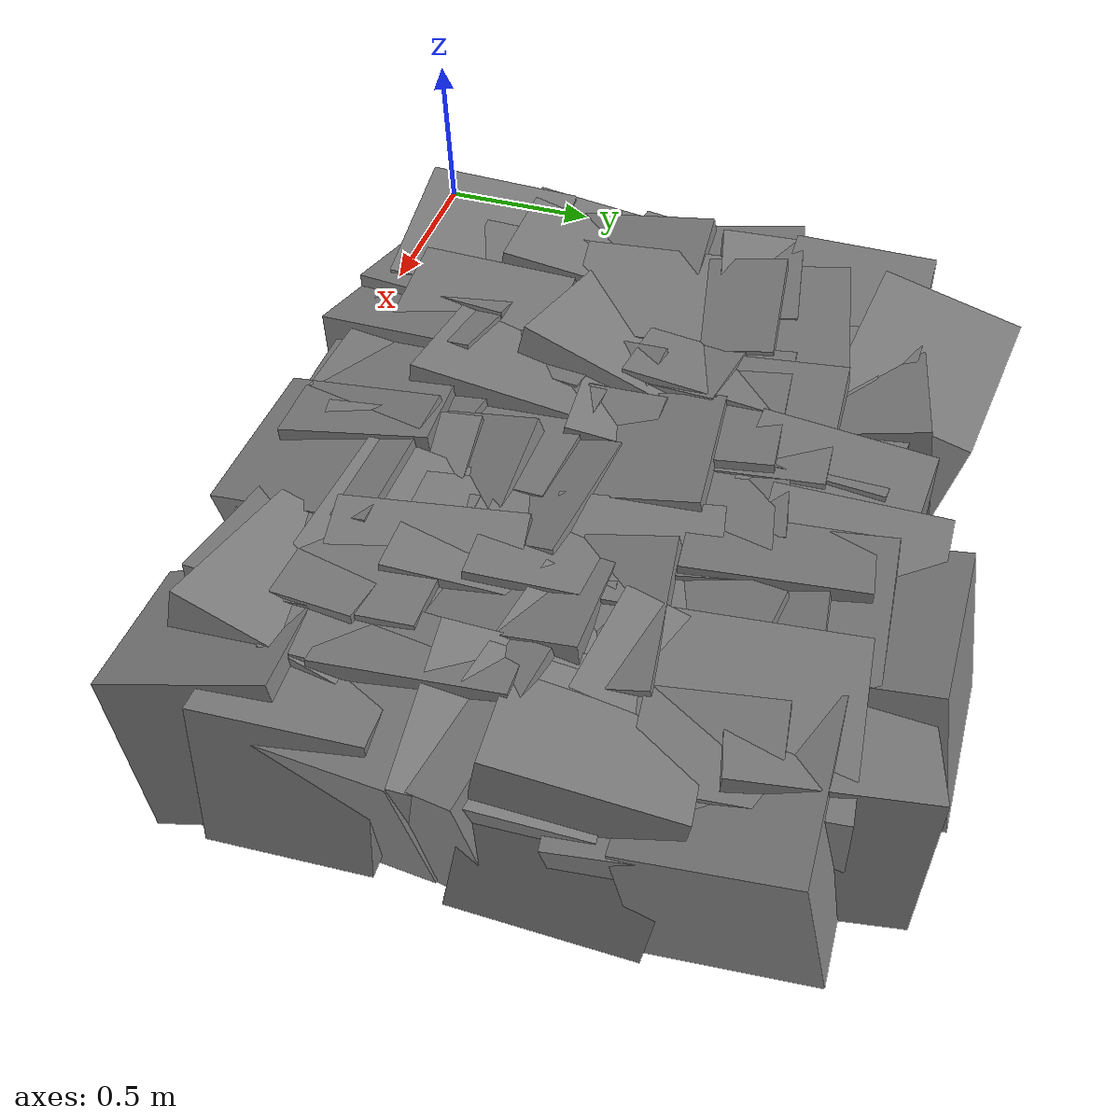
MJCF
<mujoco model="floor_rough">
  <worldbody>
    <body name="floor_rough" pos="0 0 0" euler="0 0 0">
      <geom pos="0.16323154240764468 0.16711684075263722 -0.25" type="box" size="0.2614055181358708 0.26165144024134473 0.2678547705118678" quat="0.9955021653277455 -0.05227951545653168 0.07035307380236844 0.03595463944971459" contype="1" conaffinity="0"/>
      <geom pos="0.16323154240764468 0.3521853855398272 -0.25" type="box" size="0.25924078297964065 0.2569304019955344 0.22566938831263317" quat="0.9990850041588107 0.03301489185005833 -0.00351757410408929 -0.026959192375520944" contype="1" conaffinity="0"/>
      <geom pos="0.16323154240764468 0.505583415616016 -0.25" type="box" size="0.24081742859994984 0.23449502676190112 0.2691886951186675" quat="0.9949381652042242 -0.07835460175762865 -0.05950951959781436 0.020425985427704803" contype="1" conaffinity="0"/>
      <geom pos="0.16323154240764468 0.7457515739619736 -0.25" type="box" size="0.22984282514121657 0.2521829416242697 0.2514942252767554" quat="0.9944065570633525 0.06481248162182318 0.08227877188193862 0.013606806863860961" contype="1" conaffinity="0"/>
      <geom pos="0.16323154240764468 0.9017023553608359 -0.25" type="box" size="0.24839394994689584 0.2595235650809874 0.23018221051131732" quat="0.9967868092370497 -0.016145340877784558 -0.01713956454608466 -0.07656121881300189" contype="1" conaffinity="0"/>
      <geom pos="0.16323154240764468 1.0676839715721342 -0.25" type="box" size="0.24749213661735422 0.2533788666755142 0.2630994714539131" quat="0.9964200523869327 0.04704799179066725 0.011502733410774457 0.0692910729731367" contype="1" conaffinity="0"/>
      <geom pos="0.16323154240764468 1.2411087240397314 -0.25" type="box" size="0.2362889456158356 0.23989852661129554 0.2531115424006869" quat="0.9896071260008322 -0.06415390074674603 0.08231325932054186 0.09892694540608647" contype="1" conaffinity="0"/>
      <geom pos="0.16323154240764468 1.4789797265998796 -0.25" type="box" size="0.2415470925708963 0.23681838135944178 0.26613522710570564" quat="0.9971968532336004 0.003352583160421332 0.07382655888063364 -0.01169766177499612" contype="1" conaffinity="0"/>
      <geom pos="0.3589414990852865 0.18366497476974786 -0.25" type="box" size="0.24743694238604977 0.2733298134370998 0.22783127908555437" quat="0.993615913845723 0.024030615022289543 -0.06825603169359859 -0.08655090659040854" contype="1" conaffinity="0"/>
      <geom pos="0.3589414990852865 0.42016969103554414 -0.25" type="box" size="0.25309217176772025 0.24644665540658217 0.22978832104744615" quat="0.9960525240841488 -0.006756400528304559 0.08745157830079797 -0.013636046721706414" contype="1" conaffinity="0"/>
      <geom pos="0.3589414990852865 0.6661082959588841 -0.25" type="box" size="0.2701106401964972 0.2583676334259062 0.22868416206406394" quat="0.9948666270629181 0.043215771091039926 0.015409344449585437 -0.0901961395465098" contype="1" conaffinity="0"/>
      <geom pos="0.3589414990852865 0.8343165792711791 -0.25" type="box" size="0.22622581847026968 0.24949458961140408 0.2719696791054209" quat="0.9977427137624555 -0.011617766411774116 0.01623090805936894 0.06411756593243664" contype="1" conaffinity="0"/>
      <geom pos="0.3589414990852865 1.0329073499515262 -0.25" type="box" size="0.2289042285648701 0.2731819121215619 0.2665926433751886" quat="0.9958694441928445 0.07206469056664687 0.026075849458922436 0.04869066205715486" contype="1" conaffinity="0"/>
      <geom pos="0.3589414990852865 1.2792092620560895 -0.25" type="box" size="0.25153327540667536 0.23545648388732002 0.27150590752666504" quat="0.9958463452541565 0.04385347989041435 0.013677693560492442 0.07861201971903264" contype="1" conaffinity="0"/>
      <geom pos="0.3589414990852865 1.4990726838735822 -0.25" type="box" size="0.2446336711906654 0.25260744428445353 0.23575782907337373" quat="0.9973486801005172 0.045079879011220715 0.04813001867325701 -0.030772002089592177" contype="1" conaffinity="0"/>
      <geom pos="0.3589414990852865 1.7125923181655747 -0.25" type="box" size="0.26682083237387566 0.23324402850423293 0.25387208472869377" quat="0.9884530884707059 -0.08486620865920869 0.10210978843938617 -0.07301924147372599" contype="1" conaffinity="0"/>
      <geom pos="0.5890917146071166 0.15612923096071146 -0.25" type="box" size="0.252007640384064 0.27165724810322217 0.2323357786584752" quat="0.9924261364921559 0.05005384958882335 -0.08950804102972633 -0.06762607736378566" contype="1" conaffinity="0"/>
      <geom pos="0.5890917146071166 0.3102215333618008 -0.25" type="box" size="0.25268580150115794 0.2642315155496849 0.25217482518812895" quat="0.9959472868897539 -0.0068810639374444265 0.08897848140324674 -0.011157174516840165" contype="1" conaffinity="0"/>
      <geom pos="0.5890917146071166 0.542288459049918 -0.25" type="box" size="0.25789446427593266 0.26486417830051207 0.23585336713777516" quat="0.9942002740903005 0.029083544248112374 -0.035292332642472814 -0.0973366000505071" contype="1" conaffinity="0"/>
      <geom pos="0.5890917146071166 0.7650836360875785 -0.25" type="box" size="0.2691346622054962 0.253745575464073 0.27236127073077454" quat="0.9860040884823711 -0.10514566116777731 -0.0804314482521126 -0.10134648274956123" contype="1" conaffinity="0"/>
      <geom pos="0.5890917146071166 0.9673122132735689 -0.25" type="box" size="0.23558615307707229 0.26041221867834224 0.251691543622762" quat="0.9940557782414418 0.05285259771320988 -0.0398932183987607 -0.08641900129922796" contype="1" conaffinity="0"/>
      <geom pos="0.5890917146071166 1.1261473692256518 -0.25" type="box" size="0.26799345325243273 0.2534909743248345 0.25909719421819083" quat="0.9963738699757333 -0.01866066459365996 -0.06626149492352158 -0.05000305107694381" contype="1" conaffinity="0"/>
      <geom pos="0.5890917146071166 1.3728923514871223 -0.25" type="box" size="0.2606246620653105 0.25146989420452953 0.23194121108725524" quat="0.9979918352674308 0.007386881369363766 0.03877414478337732 0.049540856063435404" contype="1" conaffinity="0"/>
      <geom pos="0.5890917146071166 1.5669218070804165 -0.25" type="box" size="0.2391115062403861 0.23878204416263557 0.23031595662690357" quat="0.9937291929339126 0.06842217305708867 -0.02037701553123293 0.08605506715528259" contype="1" conaffinity="0"/>
      <geom pos="0.8247675214417498 0.1720631898757524 -0.25" type="box" size="0.2709401050433787 0.23247194311113245 0.23052215205709523" quat="0.9995958769252122 -0.004316866143274422 -0.02769851883414746 -0.00471588329069096" contype="1" conaffinity="0"/>
      <geom pos="0.8247675214417498 0.3296472603606147 -0.25" type="box" size="0.2680168622721446 0.22796456935026432 0.23191684982681318" quat="0.9940109894682382 0.07018363880924726 -0.023913709185593844 -0.0802779183390665" contype="1" conaffinity="0"/>
      <geom pos="0.8247675214417498 0.4900644138113639 -0.25" type="box" size="0.22676219402796088 0.26532279259274755 0.26859305881800977" quat="0.994814082169978 -0.04809181645099809 -0.08706668367183261 -0.02124880469900107" contype="1" conaffinity="0"/>
      <geom pos="0.8247675214417498 0.7207574334768896 -0.25" type="box" size="0.23885929788958238 0.26106664772543253 0.22798193938048897" quat="0.9916329916879236 0.07924036841360854 0.07480941567626935 -0.06919917005217172" contype="1" conaffinity="0"/>
      <geom pos="0.8247675214417498 0.9660790701724135 -0.25" type="box" size="0.2604754067500533 0.2601571666050236 0.2255264504950408" quat="0.9949907731328902 -0.07880335244543472 -0.049072755720329014 0.03708446669142091" contype="1" conaffinity="0"/>
      <geom pos="0.8247675214417498 1.1404360280658188 -0.25" type="box" size="0.26100377896847465 0.25944820948108493 0.2650282652629111" quat="0.9983560596309162 0.045872139979064905 -0.01044491690788341 0.03273879476643689" contype="1" conaffinity="0"/>
      <geom pos="0.8247675214417498 1.3247963466899715 -0.25" type="box" size="0.24411127022984283 0.23544116029298176 0.26907105093329386" quat="0.9986008322717717 0.04330090603022496 0.027846131339412758 0.012083140838151513" contype="1" conaffinity="0"/>
      <geom pos="0.8247675214417498 1.4906014012403304 -0.25" type="box" size="0.26553579936961563 0.25761463061956696 0.2274421140397342" quat="0.9949253185352799 0.004973599483621007 -0.08209506638575793 -0.057959243617964104" contype="1" conaffinity="0"/>
      <geom pos="1.0736697888118667 0.1888727993607041 -0.25" type="box" size="0.2508981675236043 0.23293733762502564 0.2694786777309357" quat="0.9952810643623471 0.05527761245687465 -0.06291255691768376 0.04901018939874098" contype="1" conaffinity="0"/>
      <geom pos="1.0736697888118667 0.3393280442879778 -0.25" type="box" size="0.2270921521169172 0.24305849810265898 0.22674510467656983" quat="0.9964370300384531 -0.023488266413185663 -0.08050797443085413 -0.008944974124659208" contype="1" conaffinity="0"/>
      <geom pos="1.0736697888118667 0.5742663600707042 -0.25" type="box" size="0.2489673787933067 0.2571911132883062 0.2491425520210048" quat="0.9980162757865361 0.037926460072133114 -0.0037999980619229977 -0.050106455734756125" contype="1" conaffinity="0"/>
      <geom pos="1.0736697888118667 0.7737671441811054 -0.25" type="box" size="0.2549712230964442 0.2589352593502985 0.23448624431820905" quat="0.997095518882769 0.04174823057938547 0.059412016520708086 -0.02297441534262117" contype="1" conaffinity="0"/>
      <geom pos="1.0736697888118667 0.9989107741307849 -0.25" type="box" size="0.2330176229028141 0.2533004147313768 0.2702517272178264" quat="0.9967552556340193 0.07066144788590793 -0.015278960045394887 0.035390302747491144" contype="1" conaffinity="0"/>
      <geom pos="1.0736697888118667 1.217817750700508 -0.25" type="box" size="0.2651049372072428 0.2601918361240608 0.22774797863188112" quat="0.9942313484357892 0.07914361410370192 -0.0012704784326854164 0.07237886444749483" contype="1" conaffinity="0"/>
      <geom pos="1.0736697888118667 1.3907393041835414 -0.25" type="box" size="0.24463432842445956 0.2544856528320675 0.22556248548795724" quat="0.9985518805831683 0.0061761951296975225 -0.03623815494974712 -0.03927839766812949" contype="1" conaffinity="0"/>
      <geom pos="1.0736697888118667 1.5527790854910462 -0.25" type="box" size="0.25843262264320627 0.26457120391883826 0.2495963742682413" quat="0.9936795770490766 0.0011476335858103355 0.09790403963540854 -0.05490337071427951" contype="1" conaffinity="0"/>
      <geom pos="1.3097292895168826 0.15816811879899023 -0.25" type="box" size="0.25257346547990733 0.25850846610424955 0.2682230046049001" quat="0.9955204891930116 0.08578092108750106 0.02578047382700686 -0.030264770667262627" contype="1" conaffinity="0"/>
      <geom pos="1.3097292895168826 0.31436743775890175 -0.25" type="box" size="0.22657486568696544 0.23970298258857595 0.2555237786806547" quat="0.9942010625354588 0.021123476769803806 0.09718352510926166 0.04090731511426507" contype="1" conaffinity="0"/>
      <geom pos="1.3097292895168826 0.5007119527409271 -0.25" type="box" size="0.261191691513626 0.24172737788840312 0.24241051343267372" quat="0.9924872475594793 0.0989538569389811 0.0707221935491228 -0.013250244084889359" contype="1" conaffinity="0"/>
      <geom pos="1.3097292895168826 0.7290549393654426 -0.25" type="box" size="0.24085222157204553 0.23384460297418555 0.24699995959311194" quat="0.9934872227959712 0.09300489358644812 -0.03514155694655137 -0.05566236507276693" contype="1" conaffinity="0"/>
      <geom pos="1.3097292895168826 0.9710869757018257 -0.25" type="box" size="0.2305029595772643 0.25761714707663963 0.22595404985627143" quat="0.9947474583287371 0.010519845176940493 0.06983872327408044 0.07409034847682247" contype="1" conaffinity="0"/>
      <geom pos="1.3097292895168826 1.2206118714168992 -0.25" type="box" size="0.2398791078129746 0.22976475160650944 0.25815558670206384" quat="0.9955139744400832 0.02804325638387979 -0.04511167642508091 0.07829712073899246" contype="1" conaffinity="0"/>
      <geom pos="1.3097292895168826 1.4657378231655267 -0.25" type="box" size="0.23570619840053722 0.25935438297553404 0.26256213564573044" quat="0.9939900112462584 0.009470174264679145 -0.09925792357714472 0.04518891400789898" contype="1" conaffinity="0"/>
      <geom pos="1.3097292895168826 1.6550065315035267 -0.25" type="box" size="0.23950654431825863 0.2562632766153422 0.23913347676353297" quat="0.9974902921928956 0.0018704577261676855 0.07063400648032084 -0.004522775405011004" contype="1" conaffinity="0"/>
      <geom pos="1.4993895852963202 0.216759003283297 -0.25" type="box" size="0.25263060735887255 0.27019858741019864 0.22614240910491495" quat="0.9928169433832807 0.06851086189196369 0.022279318374548204 0.095521781320626" contype="1" conaffinity="0"/>
      <geom pos="1.4993895852963202 0.4109376799201835 -0.25" type="box" size="0.2386328836992415 0.2281859025413675 0.2608541413238451" quat="0.9967802181108214 -0.05329891711316939 0.0316270389660869 -0.05087388941042717" contype="1" conaffinity="0"/>
      <geom pos="1.4993895852963202 0.6572847667353899 -0.25" type="box" size="0.25111903872783203 0.23137254615376876 0.26840197399252236" quat="0.9981039516416846 -0.0346043482425573 -0.044870021255708686 0.02403584807061003" contype="1" conaffinity="0"/>
      <geom pos="1.4993895852963202 0.8864021037276633 -0.25" type="box" size="0.22517879010300776 0.2371318573717784 0.2718755686036277" quat="0.9961388001776346 -0.025038974377048252 -0.07188511403777663 0.0437386662186237" contype="1" conaffinity="0"/>
      <geom pos="1.4993895852963202 1.0976104333847336 -0.25" type="box" size="0.23727827100114435 0.23641413544522236 0.2640976923900203" quat="0.9965434561964953 0.002342831593963473 0.025453416137435632 0.07904286595892658" contype="1" conaffinity="0"/>
      <geom pos="1.4993895852963202 1.3191485220812265 -0.25" type="box" size="0.2429704283723809 0.25059508997728214 0.22999326801868006" quat="0.9980292822936833 -0.00035485079290545124 0.018035866612323898 -0.06010102562197007" contype="1" conaffinity="0"/>
      <geom pos="1.4993895852963202 1.5522342982113202 -0.25" type="box" size="0.25940191745234803 0.2672759453986804 0.2545442890866383" quat="0.9980992378405897 0.05651927379026394 -0.008325776395173652 0.023112000339062418" contype="1" conaffinity="0"/>
      <geom pos="1.4993895852963202 1.7827068582049246 -0.25" type="box" size="0.2744070408388724 0.23520656735044054 0.2523904973327991" quat="0.9945185282369337 0.08746108088419968 -0.05542905683805703 -0.014528454221082274" contype="1" conaffinity="0"/>
      <geom pos="1.6674038017698731 0.23548089113934173 -0.25" type="box" size="0.26190341796328176 0.25991603692108056 0.2601397120410913" quat="0.996335480137268 0.019996834242536263 -0.06610530345356647 -0.05045618391463728" contype="1" conaffinity="0"/>
      <geom pos="1.6674038017698731 0.38904108497868417 -0.25" type="box" size="0.2555480966087855 0.24646422386731479 0.273098746459927" quat="0.9990398078976634 0.024968862299101304 -0.03445965169917375 0.010418759813917586" contype="1" conaffinity="0"/>
      <geom pos="1.6674038017698731 0.5471526926979553 -0.25" type="box" size="0.2342018037496553 0.2749145805140539 0.2658131819028358" quat="0.9935375229890523 0.003253808716196343 0.09068876881719656 0.06817734485910745" contype="1" conaffinity="0"/>
      <geom pos="1.6674038017698731 0.7093341752957286 -0.25" type="box" size="0.2505893561508829 0.24054907521365115 0.2459321294473773" quat="0.9942122281251713 -0.021800481428993504 -0.06933750807673238 -0.0791144388184323" contype="1" conaffinity="0"/>
      <geom pos="1.6674038017698731 0.86200868156014 -0.25" type="box" size="0.24530881503304944 0.22603491459652258 0.27293267734271326" quat="0.9952342230677209 0.058949133339017835 -0.07764594595148192 0.002224407936548402" contype="1" conaffinity="0"/>
      <geom pos="1.6674038017698731 1.0317481625112692 -0.25" type="box" size="0.2468442824326435 0.24494525105028786 0.26051887100337584" quat="0.9944288568260438 0.08591314720281455 0.033821641004037145 0.050855446602595014" contype="1" conaffinity="0"/>
      <geom pos="1.6674038017698731 1.2486208262427259 -0.25" type="box" size="0.23883918438931695 0.269752125333226 0.24525522387118906" quat="0.990670737751964 0.06868012060158259 0.05846727130944847 -0.10215727375844973" contype="1" conaffinity="0"/>
      <geom pos="1.6674038017698731 1.4213062750796943 -0.25" type="box" size="0.22540451961184305 0.2699609500337392 0.23174355737540142" quat="0.9935389945210231 0.09458422401135669 0.04680022240596426 0.04175919200698675" contype="1" conaffinity="0"/>
      <geom pos="1.8518978525361656 0.24407860615588012 -0.25" type="box" size="0.24498500207462082 0.2731164387752423 0.27085951905683875" quat="0.9888364846732417 -0.10065763366668277 -0.07630570118672642 -0.07904357867715556" contype="1" conaffinity="0"/>
      <geom pos="1.8518978525361656 0.486666753097406 -0.25" type="box" size="0.23606817308190406 0.23404853358051908 0.2669790486350922" quat="0.9986015419796345 -0.011487479561823062 -0.050103446187859155 0.012354871481060332" contype="1" conaffinity="0"/>
      <geom pos="1.8518978525361656 0.670633452054491 -0.25" type="box" size="0.2567541001105781 0.265375287983511 0.26930404450754203" quat="0.9954084622278139 0.028276934888132092 -0.08815414856179471 0.024315722689988852" contype="1" conaffinity="0"/>
      <geom pos="1.8518978525361656 0.8643230736336329 -0.25" type="box" size="0.24640302744601225 0.2749117483908231 0.2402137975927243" quat="0.9928531802277137 0.025468987353723948 0.06992768030176537 0.09329529850161146" contype="1" conaffinity="0"/>
      <geom pos="1.8518978525361656 1.0325998622851613 -0.25" type="box" size="0.22932808028817073 0.2397796162966556 0.2695487309073742" quat="0.9934689738224224 -0.07894448444926438 -0.020089343967139274 -0.07989733841770219" contype="1" conaffinity="0"/>
      <geom pos="1.8518978525361656 1.2825115079816778 -0.25" type="box" size="0.23390268518937826 0.25265619625200575 0.2490778322265086" quat="0.9903706836832771 -0.07745453809434766 0.0756002544544708 -0.08632094158272785" contype="1" conaffinity="0"/>
      <geom pos="1.8518978525361656 1.513831426422289 -0.25" type="box" size="0.25874135848562557 0.27204120444926794 0.2703564907807875" quat="0.9981412217605669 0.0129151278754305 0.048422615577880176 0.03467781992687351" contype="1" conaffinity="0"/>
      <geom pos="1.8518978525361656 1.6848796146455087 -0.25" type="box" size="0.2527191715996698 0.26638187395792423 0.23404085378709405" quat="0.991013424686569 -0.026468868543337836 -0.08966358154565386 0.09566730493454592" contype="1" conaffinity="0"/>
      <geom pos="2.0422754883196683 0.15710748601719143 -0.25" type="box" size="0.2279631776452816 0.24032130080202566 0.2544201752257125" quat="0.9892774000901874 0.10024574813005513 -0.08684232476852506 0.061150848575002095" contype="1" conaffinity="0"/>
      <geom pos="2.0422754883196683 0.39002635851296674 -0.25" type="box" size="0.2735327895354159 0.23307703730058785 0.25021367381826565" quat="0.9963531204233007 -0.01124669552465724 -0.07837041180157595 0.031812730416906534" contype="1" conaffinity="0"/>
      <geom pos="2.0422754883196683 0.5470474948472919 -0.25" type="box" size="0.2414676863153642 0.23736331091424465 0.259411068860148" quat="0.99517446354909 0.054713971619412445 0.05622939240060085 -0.058927275854822214" contype="1" conaffinity="0"/>
      <geom pos="2.0422754883196683 0.7292111950639225 -0.25" type="box" size="0.24303194512189935 0.2645325863682662 0.2619009694206246" quat="0.991292478315783 0.07632417790174824 0.04336526495586529 -0.09814935607268571" contype="1" conaffinity="0"/>
      <geom pos="2.0422754883196683 0.9194966426042466 -0.25" type="box" size="0.23472332670434493 0.255696716882669 0.26329141107267773" quat="0.9932570898468366 -0.07856224997982575 0.07562192401917028 0.03936560624122558" contype="1" conaffinity="0"/>
      <geom pos="2.0422754883196683 1.1186807361359645 -0.25" type="box" size="0.2667294459522221 0.2593263532771994 0.2717610584572244" quat="0.990809308039436 -0.08253702551220801 -0.09939006406784273 0.0400770468797433" contype="1" conaffinity="0"/>
      <geom pos="2.0422754883196683 1.3668400487692889 -0.25" type="box" size="0.22657077385829674 0.2721304757673345 0.23290156455996755" quat="0.9929322012181625 0.046099138453387714 0.09967130387276307 0.04501271378414338" contype="1" conaffinity="0"/>
      <geom pos="2.0422754883196683 1.5358776406685297 -0.25" type="box" size="0.265659752179175 0.23782889097949914 0.23863909945156675" quat="0.995647222157922 0.09220486908392522 0.013578126718402216 -0.0007110564314630622" contype="1" conaffinity="0"/>
    </body>
  </worldbody>
</mujoco>
